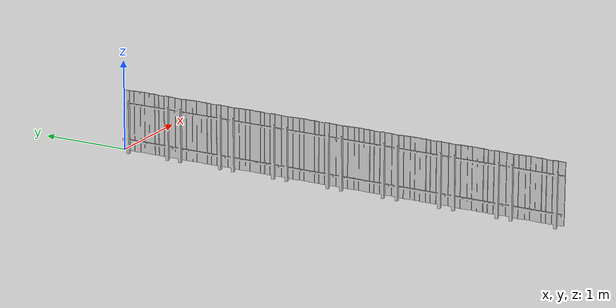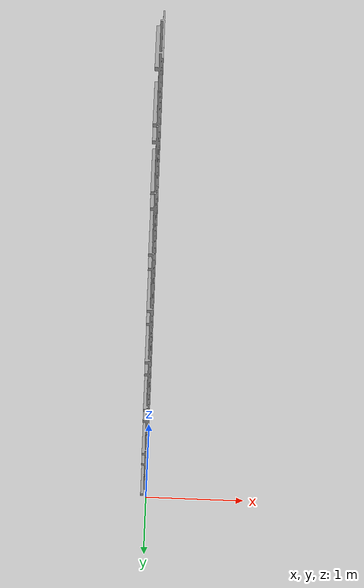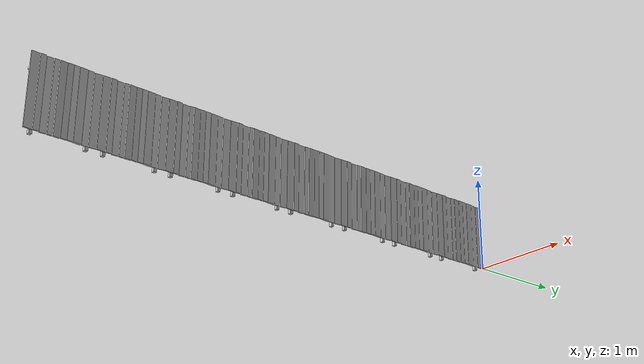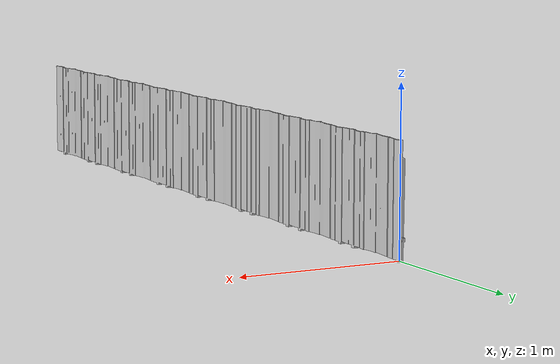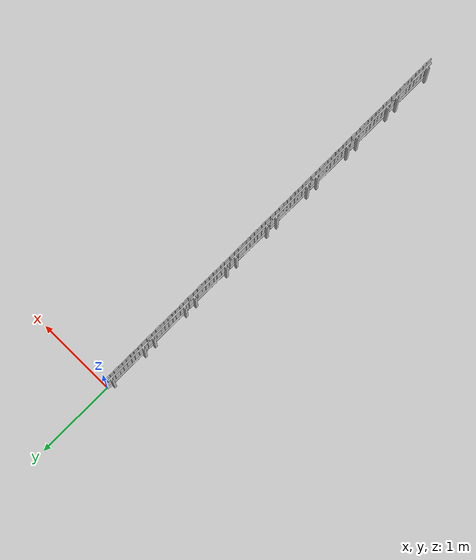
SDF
<?xml version="1.0" ?>
<sdf version='1.4'>
  <model name="fence">
      <static>1</static>
      <link name='link'>
        <visual name='visual'>
          <geometry>
            <mesh>
              <uri>model://fence/meshes/fence.dae</uri>
              <scale>1 1 1</scale>
            </mesh>
          </geometry>
        </visual>
        <collision name='collision'>
          <laser_retro>0</laser_retro>
          <pose>-0.03 -2.58 0.34 0 0 0</pose>
          <geometry>
            <box>
             <size>0.06 5.16 0.68</size>
            </box>
          </geometry>
       </collision>
      </link>
  </model>
</sdf>
